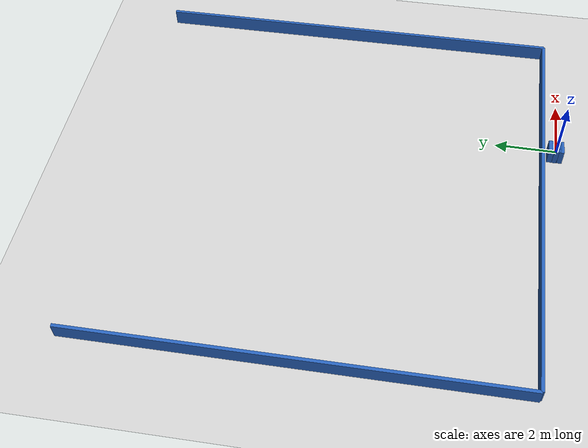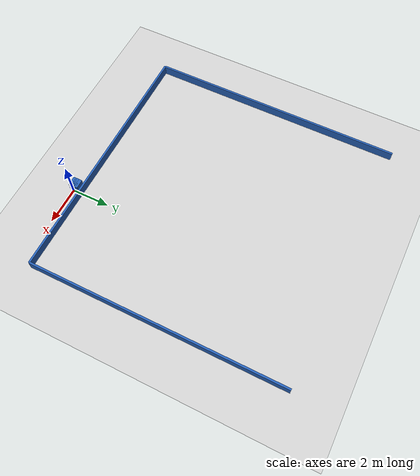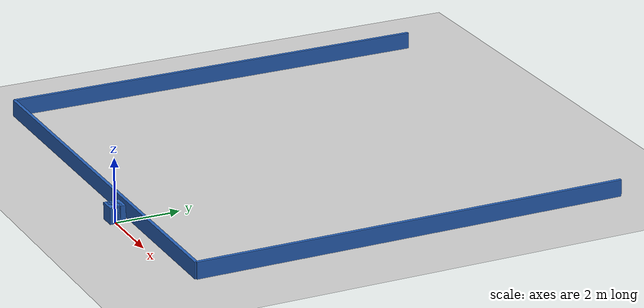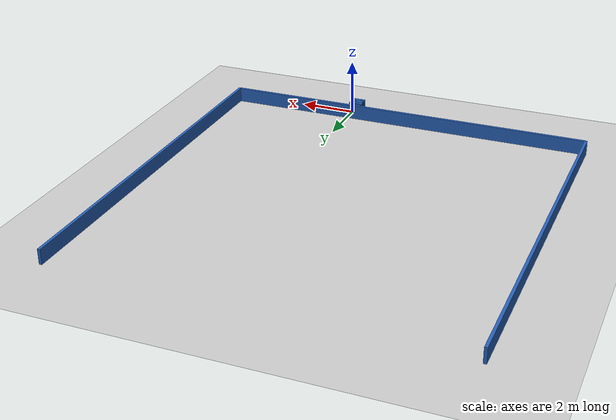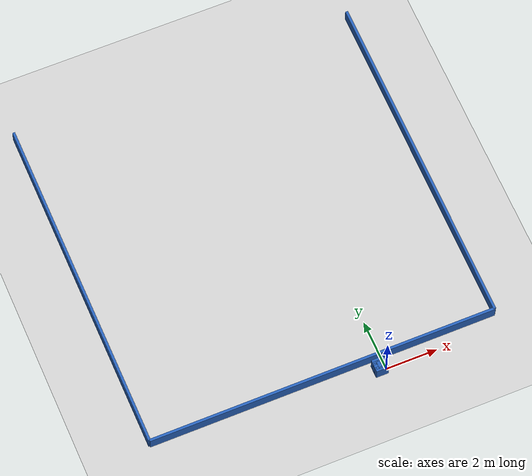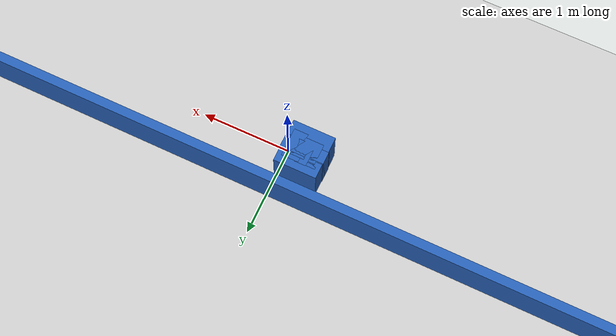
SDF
<?xml version="1.0" ?>
    <sdf version="1.5">
      <world name="default">
        <!-- A global light source -->
        <include>
          <uri>model://sun</uri>
        </include>
        <!-- A ground plane -->
        <include>
          <uri>model://ground_plane</uri>
        </include>

    <model name='libopen_space_final_T2B_90_95'>
      <static>1</static>
      <pose frame=''>-0.225000 0.075000 0.000000 0.000000 0.000000 0.000000</pose>
      <link name='link'>
        <inertial>
          <mass>1</mass>
          <inertia>
            <ixx>0.145833</ixx>
            <ixy>0</ixy>
            <ixz>0</ixz>
            <iyy>0.145833</iyy>
            <iyz>0</iyz>
            <izz>0.125</izz>
          </inertia>
        </inertial>
        <collision name='collision'>
          <geometry>
            <box>
              <size>0.12 0.12 1</size>
            </box>
          </geometry>
          <max_contacts>10</max_contacts>
          <surface>
            <contact>
              <ode/>
            </contact>
            <bounce/>
            <friction>
              <torsional>
                <ode/>
              </torsional>
              <ode/>
            </friction>
          </surface>
        </collision>
        <visual name='visual'>
          <geometry>
            <box>
              <size>0.12 0.12 1</size>
            </box>
          </geometry>
	    <material>
              <ambient>0.152000 0.379000 0.720000 1</ambient>
	      <diffuse>0.152000 0.379000 0.720000 1</diffuse>
          </material>
          <material>
            <script>
              <name>Gazebo/Grey</name>
              <uri>file://media/materials/scripts/gazebo.material</uri>
            </script>
          </material>
        </visual>
        <self_collide>0</self_collide>
        <kinematic>0</kinematic>
        <gravity>1</gravity>
      </link>
      <plugin name='libopen_space_final_T2B_90_95' filename='libopen_space_final_T2B_90_95.so'/>
    </model>

    <model name='libopen_space_final_T2B_56_75'>
      <static>1</static>
      <pose frame=''>-0.225000 0.075000 0.000000 0.000000 0.000000 0.000000</pose>
      <link name='link'>
        <inertial>
          <mass>1</mass>
          <inertia>
            <ixx>0.145833</ixx>
            <ixy>0</ixy>
            <ixz>0</ixz>
            <iyy>0.145833</iyy>
            <iyz>0</iyz>
            <izz>0.125</izz>
          </inertia>
        </inertial>
        <collision name='collision'>
          <geometry>
            <box>
              <size>0.33 0.24 1</size>
            </box>
          </geometry>
          <max_contacts>10</max_contacts>
          <surface>
            <contact>
              <ode/>
            </contact>
            <bounce/>
            <friction>
              <torsional>
                <ode/>
              </torsional>
              <ode/>
            </friction>
          </surface>
        </collision>
        <visual name='visual'>
          <geometry>
            <box>
              <size>0.33 0.24 1</size>
            </box>
          </geometry>
	    <material>
              <ambient>0.152000 0.379000 0.720000 1</ambient>
	      <diffuse>0.152000 0.379000 0.720000 1</diffuse>
          </material>
          <material>
            <script>
              <name>Gazebo/Grey</name>
              <uri>file://media/materials/scripts/gazebo.material</uri>
            </script>
          </material>
        </visual>
        <self_collide>0</self_collide>
        <kinematic>0</kinematic>
        <gravity>1</gravity>
      </link>
      <plugin name='libopen_space_final_T2B_56_75' filename='libopen_space_final_T2B_56_75.so'/>
    </model>

    <model name='libopen_space_final_T2B_81_89'>
      <static>1</static>
      <pose frame=''>-0.225000 0.075000 0.000000 0.000000 0.000000 0.000000</pose>
      <link name='link'>
        <inertial>
          <mass>1</mass>
          <inertia>
            <ixx>0.145833</ixx>
            <ixy>0</ixy>
            <ixz>0</ixz>
            <iyy>0.145833</iyy>
            <iyz>0</iyz>
            <izz>0.125</izz>
          </inertia>
        </inertial>
        <collision name='collision'>
          <geometry>
            <box>
              <size>0.25 0.19 1</size>
            </box>
          </geometry>
          <max_contacts>10</max_contacts>
          <surface>
            <contact>
              <ode/>
            </contact>
            <bounce/>
            <friction>
              <torsional>
                <ode/>
              </torsional>
              <ode/>
            </friction>
          </surface>
        </collision>
        <visual name='visual'>
          <geometry>
            <box>
              <size>0.25 0.19 1</size>
            </box>
          </geometry>
	    <material>
              <ambient>0.152000 0.379000 0.720000 1</ambient>
	      <diffuse>0.152000 0.379000 0.720000 1</diffuse>
          </material>
          <material>
            <script>
              <name>Gazebo/Grey</name>
              <uri>file://media/materials/scripts/gazebo.material</uri>
            </script>
          </material>
        </visual>
        <self_collide>0</self_collide>
        <kinematic>0</kinematic>
        <gravity>1</gravity>
      </link>
      <plugin name='libopen_space_final_T2B_81_89' filename='libopen_space_final_T2B_81_89.so'/>
    </model>

    <model name='libopen_space_final_T2B_90_76'>
      <static>1</static>
      <pose frame=''>-0.225000 0.075000 0.000000 0.000000 0.000000 0.000000</pose>
      <link name='link'>
        <inertial>
          <mass>1</mass>
          <inertia>
            <ixx>0.145833</ixx>
            <ixy>0</ixy>
            <ixz>0</ixz>
            <iyy>0.145833</iyy>
            <iyz>0</iyz>
            <izz>0.125</izz>
          </inertia>
        </inertial>
        <collision name='collision'>
          <geometry>
            <box>
              <size>0.18 0.33 1</size>
            </box>
          </geometry>
          <max_contacts>10</max_contacts>
          <surface>
            <contact>
              <ode/>
            </contact>
            <bounce/>
            <friction>
              <torsional>
                <ode/>
              </torsional>
              <ode/>
            </friction>
          </surface>
        </collision>
        <visual name='visual'>
          <geometry>
            <box>
              <size>0.18 0.33 1</size>
            </box>
          </geometry>
	    <material>
              <ambient>0.152000 0.379000 0.720000 1</ambient>
	      <diffuse>0.152000 0.379000 0.720000 1</diffuse>
          </material>
          <material>
            <script>
              <name>Gazebo/Grey</name>
              <uri>file://media/materials/scripts/gazebo.material</uri>
            </script>
          </material>
        </visual>
        <self_collide>0</self_collide>
        <kinematic>0</kinematic>
        <gravity>1</gravity>
      </link>
      <plugin name='libopen_space_final_T2B_90_76' filename='libopen_space_final_T2B_90_76.so'/>
    </model>

    <model name='libopen_space_final_T2B_87_56'>
      <static>1</static>
      <pose frame=''>-0.225000 0.075000 0.000000 0.000000 0.000000 0.000000</pose>
      <link name='link'>
        <inertial>
          <mass>1</mass>
          <inertia>
            <ixx>0.145833</ixx>
            <ixy>0</ixy>
            <ixz>0</ixz>
            <iyy>0.145833</iyy>
            <iyz>0</iyz>
            <izz>0.125</izz>
          </inertia>
        </inertial>
        <collision name='collision'>
          <geometry>
            <box>
              <size>0.49 0.14 1</size>
            </box>
          </geometry>
          <max_contacts>10</max_contacts>
          <surface>
            <contact>
              <ode/>
            </contact>
            <bounce/>
            <friction>
              <torsional>
                <ode/>
              </torsional>
              <ode/>
            </friction>
          </surface>
        </collision>
        <visual name='visual'>
          <geometry>
            <box>
              <size>0.49 0.14 1</size>
            </box>
          </geometry>
	    <material>
              <ambient>0.152000 0.379000 0.720000 1</ambient>
	      <diffuse>0.152000 0.379000 0.720000 1</diffuse>
          </material>
          <material>
            <script>
              <name>Gazebo/Grey</name>
              <uri>file://media/materials/scripts/gazebo.material</uri>
            </script>
          </material>
        </visual>
        <self_collide>0</self_collide>
        <kinematic>0</kinematic>
        <gravity>1</gravity>
      </link>
      <plugin name='libopen_space_final_T2B_87_56' filename='libopen_space_final_T2B_87_56.so'/>
    </model>

    <model name='libopen_space_final_T2B_77_58'>
      <static>1</static>
      <pose frame=''>-0.225000 0.075000 0.000000 0.000000 0.000000 0.000000</pose>
      <link name='link'>
        <inertial>
          <mass>1</mass>
          <inertia>
            <ixx>0.145833</ixx>
            <ixy>0</ixy>
            <ixz>0</ixz>
            <iyy>0.145833</iyy>
            <iyz>0</iyz>
            <izz>0.125</izz>
          </inertia>
        </inertial>
        <collision name='collision'>
          <geometry>
            <box>
              <size>0.33 0.22 1</size>
            </box>
          </geometry>
          <max_contacts>10</max_contacts>
          <surface>
            <contact>
              <ode/>
            </contact>
            <bounce/>
            <friction>
              <torsional>
                <ode/>
              </torsional>
              <ode/>
            </friction>
          </surface>
        </collision>
        <visual name='visual'>
          <geometry>
            <box>
              <size>0.33 0.22 1</size>
            </box>
          </geometry>
	    <material>
              <ambient>0.152000 0.379000 0.720000 1</ambient>
	      <diffuse>0.152000 0.379000 0.720000 1</diffuse>
          </material>
          <material>
            <script>
              <name>Gazebo/Grey</name>
              <uri>file://media/materials/scripts/gazebo.material</uri>
            </script>
          </material>
        </visual>
        <self_collide>0</self_collide>
        <kinematic>0</kinematic>
        <gravity>1</gravity>
      </link>
      <plugin name='libopen_space_final_T2B_77_58' filename='libopen_space_final_T2B_77_58.so'/>
    </model>

    <model name='libopen_space_final_T2B_141_33'>
      <static>1</static>
      <pose frame=''>-0.225000 0.075000 0.000000 0.000000 0.000000 0.000000</pose>
      <link name='link'>
        <inertial>
          <mass>1</mass>
          <inertia>
            <ixx>0.145833</ixx>
            <ixy>0</ixy>
            <ixz>0</ixz>
            <iyy>0.145833</iyy>
            <iyz>0</iyz>
            <izz>0.125</izz>
          </inertia>
        </inertial>
        <collision name='collision'>
          <geometry>
            <box>
              <size>0.48 0.49 1</size>
            </box>
          </geometry>
          <max_contacts>10</max_contacts>
          <surface>
            <contact>
              <ode/>
            </contact>
            <bounce/>
            <friction>
              <torsional>
                <ode/>
              </torsional>
              <ode/>
            </friction>
          </surface>
        </collision>
        <visual name='visual'>
          <geometry>
            <box>
              <size>0.48 0.49 1</size>
            </box>
          </geometry>
	    <material>
              <ambient>0.152000 0.379000 0.720000 1</ambient>
	      <diffuse>0.152000 0.379000 0.720000 1</diffuse>
          </material>
          <material>
            <script>
              <name>Gazebo/Grey</name>
              <uri>file://media/materials/scripts/gazebo.material</uri>
            </script>
          </material>
        </visual>
        <self_collide>0</self_collide>
        <kinematic>0</kinematic>
        <gravity>1</gravity>
      </link>
      <plugin name='libopen_space_final_T2B_141_33' filename='libopen_space_final_T2B_141_33.so'/>
    </model>

    <model name='libopen_space_final_T2B_73_39'>
      <static>1</static>
      <pose frame=''>-0.225000 0.075000 0.000000 0.000000 0.000000 0.000000</pose>
      <link name='link'>
        <inertial>
          <mass>1</mass>
          <inertia>
            <ixx>0.145833</ixx>
            <ixy>0</ixy>
            <ixz>0</ixz>
            <iyy>0.145833</iyy>
            <iyz>0</iyz>
            <izz>0.125</izz>
          </inertia>
        </inertial>
        <collision name='collision'>
          <geometry>
            <box>
              <size>0.49 0.16 1</size>
            </box>
          </geometry>
          <max_contacts>10</max_contacts>
          <surface>
            <contact>
              <ode/>
            </contact>
            <bounce/>
            <friction>
              <torsional>
                <ode/>
              </torsional>
              <ode/>
            </friction>
          </surface>
        </collision>
        <visual name='visual'>
          <geometry>
            <box>
              <size>0.49 0.16 1</size>
            </box>
          </geometry>
	    <material>
              <ambient>0.152000 0.379000 0.720000 1</ambient>
	      <diffuse>0.152000 0.379000 0.720000 1</diffuse>
          </material>
          <material>
            <script>
              <name>Gazebo/Grey</name>
              <uri>file://media/materials/scripts/gazebo.material</uri>
            </script>
          </material>
        </visual>
        <self_collide>0</self_collide>
        <kinematic>0</kinematic>
        <gravity>1</gravity>
      </link>
      <plugin name='libopen_space_final_T2B_73_39' filename='libopen_space_final_T2B_73_39.so'/>
    </model>

    <model name='libopen_space_final_T2B_79_93'>
      <static>1</static>
      <pose frame=''>-0.225000 0.075000 0.000000 0.000000 0.000000 0.000000</pose>
      <link name='link'>
        <inertial>
          <mass>1</mass>
          <inertia>
            <ixx>0.145833</ixx>
            <ixy>0</ixy>
            <ixz>0</ixz>
            <iyy>0.145833</iyy>
            <iyz>0</iyz>
            <izz>0.125</izz>
          </inertia>
        </inertial>
        <collision name='collision'>
          <geometry>
            <box>
              <size>0.20 0.23 1</size>
            </box>
          </geometry>
          <max_contacts>10</max_contacts>
          <surface>
            <contact>
              <ode/>
            </contact>
            <bounce/>
            <friction>
              <torsional>
                <ode/>
              </torsional>
              <ode/>
            </friction>
          </surface>
        </collision>
        <visual name='visual'>
          <geometry>
            <box>
              <size>0.20 0.23 1</size>
            </box>
          </geometry>
	    <material>
              <ambient>0.152000 0.379000 0.720000 1</ambient>
	      <diffuse>0.152000 0.379000 0.720000 1</diffuse>
          </material>
          <material>
            <script>
              <name>Gazebo/Grey</name>
              <uri>file://media/materials/scripts/gazebo.material</uri>
            </script>
          </material>
        </visual>
        <self_collide>0</self_collide>
        <kinematic>0</kinematic>
        <gravity>1</gravity>
      </link>
      <plugin name='libopen_space_final_T2B_79_93' filename='libopen_space_final_T2B_79_93.so'/>
    </model>

    <model name='libopen_space_final_T2B_125_86'>
      <static>1</static>
      <pose frame=''>-0.225000 0.075000 0.000000 0.000000 0.000000 0.000000</pose>
      <link name='link'>
        <inertial>
          <mass>1</mass>
          <inertia>
            <ixx>0.145833</ixx>
            <ixy>0</ixy>
            <ixz>0</ixz>
            <iyy>0.145833</iyy>
            <iyz>0</iyz>
            <izz>0.125</izz>
          </inertia>
        </inertial>
        <collision name='collision'>
          <geometry>
            <box>
              <size>0.24 0.30 1</size>
            </box>
          </geometry>
          <max_contacts>10</max_contacts>
          <surface>
            <contact>
              <ode/>
            </contact>
            <bounce/>
            <friction>
              <torsional>
                <ode/>
              </torsional>
              <ode/>
            </friction>
          </surface>
        </collision>
        <visual name='visual'>
          <geometry>
            <box>
              <size>0.24 0.30 1</size>
            </box>
          </geometry>
	    <material>
              <ambient>0.152000 0.379000 0.720000 1</ambient>
	      <diffuse>0.152000 0.379000 0.720000 1</diffuse>
          </material>
          <material>
            <script>
              <name>Gazebo/Grey</name>
              <uri>file://media/materials/scripts/gazebo.material</uri>
            </script>
          </material>
        </visual>
        <self_collide>0</self_collide>
        <kinematic>0</kinematic>
        <gravity>1</gravity>
      </link>
      <plugin name='libopen_space_final_T2B_125_86' filename='libopen_space_final_T2B_125_86.so'/>
    </model>

    <model name='libopen_space_final_T2B_129_92'>
      <static>1</static>
      <pose frame=''>-0.225000 0.075000 0.000000 0.000000 0.000000 0.000000</pose>
      <link name='link'>
        <inertial>
          <mass>1</mass>
          <inertia>
            <ixx>0.145833</ixx>
            <ixy>0</ixy>
            <ixz>0</ixz>
            <iyy>0.145833</iyy>
            <iyz>0</iyz>
            <izz>0.125</izz>
          </inertia>
        </inertial>
        <collision name='collision'>
          <geometry>
            <box>
              <size>0.38 0.32 1</size>
            </box>
          </geometry>
          <max_contacts>10</max_contacts>
          <surface>
            <contact>
              <ode/>
            </contact>
            <bounce/>
            <friction>
              <torsional>
                <ode/>
              </torsional>
              <ode/>
            </friction>
          </surface>
        </collision>
        <visual name='visual'>
          <geometry>
            <box>
              <size>0.38 0.32 1</size>
            </box>
          </geometry>
	    <material>
              <ambient>0.152000 0.379000 0.720000 1</ambient>
	      <diffuse>0.152000 0.379000 0.720000 1</diffuse>
          </material>
          <material>
            <script>
              <name>Gazebo/Grey</name>
              <uri>file://media/materials/scripts/gazebo.material</uri>
            </script>
          </material>
        </visual>
        <self_collide>0</self_collide>
        <kinematic>0</kinematic>
        <gravity>1</gravity>
      </link>
      <plugin name='libopen_space_final_T2B_129_92' filename='libopen_space_final_T2B_129_92.so'/>
    </model>

        <model name='bottom_wall'>
          <static>1</static>
          <pose frame=''>-2.25 0.5 0.000000 0.000000 0.000000 1.57079632</pose>
          <link name='link'>
            <inertial>
            <mass>1</mass>
            <inertia>
              <ixx>0.145833</ixx>
              <ixy>0</ixy>
              <ixz>0</ixz>
              <iyy>0.145833</iyy>
              <iyz>0</iyz>
              <izz>0.125</izz>
            </inertia>
            </inertial>
            <collision name='collision'>
            <geometry>
              <box>
              <size>0.1 13.5 1</size>
              </box>
            </geometry>
            <max_contacts>10</max_contacts>
            <surface>
              <contact>
              <ode/>
              </contact>
              <bounce/>
              <friction>
              <torsional>
                <ode/>
              </torsional>
              <ode/>
              </friction>
            </surface>
            </collision>
            <visual name='visual'>
            <geometry>
              <box>
              <size>0.1 13.5 1</size>
              </box>
            </geometry>
            <material>
              <ambient>0.152000 0.379000 0.720000 1</ambient>
            <diffuse>0.152000 0.379000 0.720000 1</diffuse>
            </material>
            <material>
              <script>
              <name>Gazebo/Grey</name>
              <uri>file://media/materials/scripts/gazebo.material</uri>
              </script>
            </material>
            </visual>
            <self_collide>0</self_collide>
            <kinematic>0</kinematic>
            <gravity>1</gravity>
          </link>
        </model>

        <model name='left_wall'>
          <static>1</static>
          <pose frame=''>-9 7.25 0.000000 0.000000 0.000000 0.000000</pose>
          <link name='link'>
            <inertial>
            <mass>1</mass>
            <inertia>
              <ixx>0.145833</ixx>
              <ixy>0</ixy>
              <ixz>0</ixz>
              <iyy>0.145833</iyy>
              <iyz>0</iyz>
              <izz>0.125</izz>
            </inertia>
            </inertial>
            <collision name='collision'>
            <geometry>
              <box>
              <size>0.1 13.5 1</size>
              </box>
            </geometry>
            <max_contacts>10</max_contacts>
            <surface>
              <contact>
              <ode/>
              </contact>
              <bounce/>
              <friction>
              <torsional>
                <ode/>
              </torsional>
              <ode/>
              </friction>
            </surface>
            </collision>
            <visual name='visual'>
            <geometry>
              <box>
              <size>0.1 13.5 1</size>
              </box>
            </geometry>
            <material>
              <ambient>0.152000 0.379000 0.720000 1</ambient>
            <diffuse>0.152000 0.379000 0.720000 1</diffuse>
            </material>
            <material>
              <script>
              <name>Gazebo/Grey</name>
              <uri>file://media/materials/scripts/gazebo.material</uri>
              </script>
            </material>
            </visual>
            <self_collide>0</self_collide>
            <kinematic>0</kinematic>
            <gravity>1</gravity>
          </link>
        </model>

        <model name='right_wall'>
          <static>1</static>
          <pose frame=''>4.5 7.25 0.000000 0.000000 0.000000 0.000000</pose>
          <link name='link'>
            <inertial>
            <mass>1</mass>
            <inertia>
              <ixx>0.145833</ixx>
              <ixy>0</ixy>
              <ixz>0</ixz>
              <iyy>0.145833</iyy>
              <iyz>0</iyz>
              <izz>0.125</izz>
            </inertia>
            </inertial>
            <collision name='collision'>
            <geometry>
              <box>
              <size>0.1 13.5 1</size>
              </box>
            </geometry>
            <max_contacts>10</max_contacts>
            <surface>
              <contact>
              <ode/>
              </contact>
              <bounce/>
              <friction>
              <torsional>
                <ode/>
              </torsional>
              <ode/>
              </friction>
            </surface>
            </collision>
            <visual name='visual'>
            <geometry>
              <box>
              <size>0.1 13.5 1</size>
              </box>
            </geometry>
            <material>
              <ambient>0.152000 0.379000 0.720000 1</ambient>
            <diffuse>0.152000 0.379000 0.720000 1</diffuse>
            </material>
            <material>
              <script>
              <name>Gazebo/Grey</name>
              <uri>file://media/materials/scripts/gazebo.material</uri>
              </script>
            </material>
            </visual>
            <self_collide>0</self_collide>
            <kinematic>0</kinematic>
            <gravity>1</gravity>
          </link>
        </model>

      </world>
    </sdf>"
